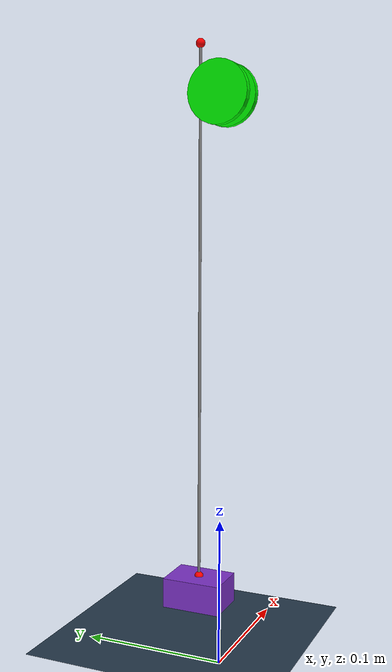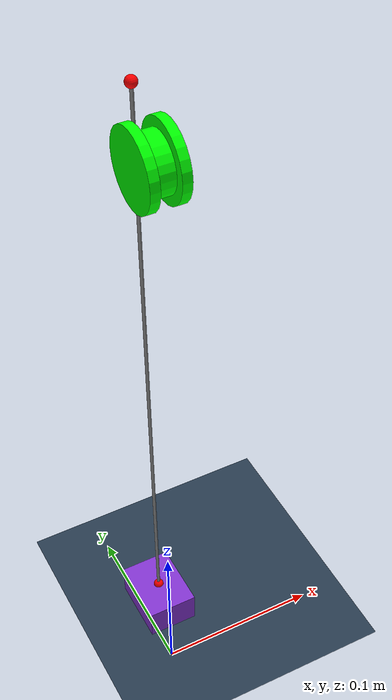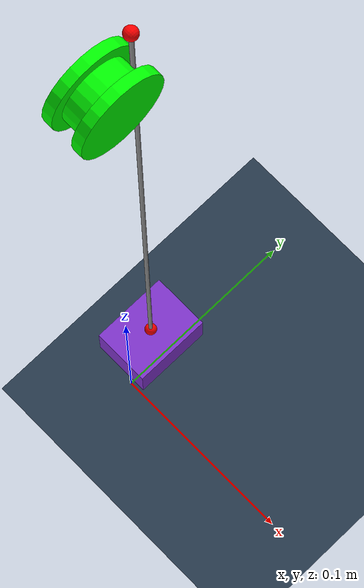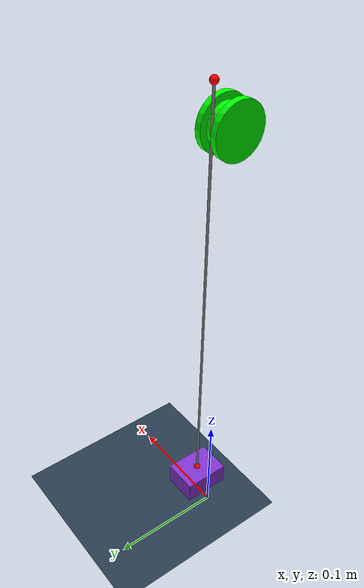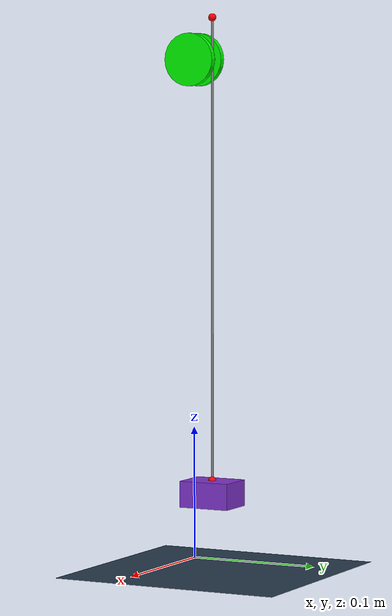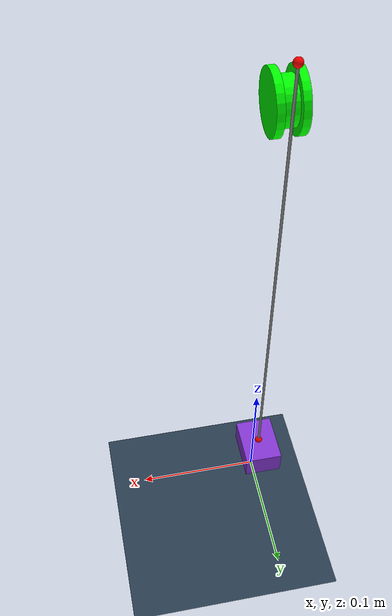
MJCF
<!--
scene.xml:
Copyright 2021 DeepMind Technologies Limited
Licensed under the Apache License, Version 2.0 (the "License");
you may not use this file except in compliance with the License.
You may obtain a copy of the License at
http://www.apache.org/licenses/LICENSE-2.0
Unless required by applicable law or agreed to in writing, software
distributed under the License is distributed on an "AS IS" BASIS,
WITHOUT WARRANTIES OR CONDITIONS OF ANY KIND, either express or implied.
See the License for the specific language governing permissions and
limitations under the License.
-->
<mujoco model="Brickiebot">

  <compiler meshdir="assets"/>
  <include file="scene.xml"/>

  <option timestep="0.001" jacobian="dense"/>
  <size nconmax="500" njmax="1500" nkey="1"/>

  <default>
    <geom solref="1e-2 5" solimp=".5 .99 1e-3" friction=".5"/>
  </default>

  <worldbody>
    <light pos=".5 0 2"/>

<!-- ############################################### TENDON TYPE HERE ############################################## -->

  <body name="beam" pos="0 0 0.3785" quat="0 1 0 1">
      <body name="slider" pos="0 0 0">
        <geom type="cylinder" density="100" size=".015 .005 .015" rgba="0 1 0 1" mass="10"/>
        <geom type="cylinder" density="100" size=".02 .0025 .02" pos="0 0 0.0075" rgba="0 1 0 1" mass="10"/>
        <geom type="cylinder" density="100" size=".02 .0025 .02" pos="0 0 -0.0075" rgba="0 1 0 1" mass="10"/>
      </body>
    </body>

    <body name="moving_bax" pos="0 0.015 0.41" quat="0 1 0 1">
      <geom type="box" size=".001 .001 .001" rgba=".5 .2 .8 1" mass="10"/>
      <site name="cable_up" pos="0 0 -0.0005" size="0.003" rgba="1 0 0 1"/>
      <joint name="slider" type="slide" axis="0 1 0" pos="0 0 0" damping="1"/>
    </body>

    <body name="payload" pos="0 0.015 0.05">
      <geom type="box" size=".015 .02 0.01" rgba=".5 .2 .8 1" mass="1"/>
      <freejoint/>
       <geom type="cylinder" size=".001 .001" density="100"  rgba=".5 .2 .2 .5"/>
      <site name="cable_down" pos="0 0 0.01" size="0.003" rgba="1 0 0 1"/>
    </body>

  </worldbody>

  <tendon>
    <spatial name="tendon_cable" limited="true" width=".001" springlength="0.5" range="0 0.2" solimplimit="0.001 0.001 0.001 0.5 1" solreflimit="-100 -0" damping="50">
      <site site="cable_up"/>
      <site site="cable_down"/>
    </spatial>
  </tendon>

  <actuator>
    <position joint="slider" ctrllimited="true" ctrlrange="-1 1"/>
  </actuator>

</mujoco>

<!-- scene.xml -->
<mujoco>
  <compiler meshdir="assets" texturedir="assets"/>
  <statistic extent="1.5" meansize=".05"/>

  <option timestep="0.005" jacobian="sparse"/>

  <visual>
    <rgba haze="0.15 0.25 0.35 1"/>
    <quality shadowsize="4096"/>
    <map stiffness="700" shadowscale="0.5" fogstart="10" fogend="15" zfar="40" haze="0.3"/>
  </visual>

  <asset>
    <texture type="skybox" builtin="gradient" rgb1="0.3 0.5 0.7" rgb2="0 0 0" width="512" height="512"/>
    <texture name="texplane" type="2d" builtin="checker" rgb1=".2 .3 .4" rgb2=".1 0.15 0.2"
      width="512" height="512" mark="cross" markrgb=".8 .8 .8"/>
    <texture name="texcarpet" type="2d" file="carpet.png"/>
    <texture name="texsponge" type="2d" file="sponge.png"/>
    <texture name="texmarble" type="cube" file="marble.png"/>

    <material name="matplane" reflectance="0.3" texture="texplane" texrepeat="1 1" texuniform="true"/>
    <material name="matcarpet" texture="texcarpet"/>
    <material name="matsponge" texture="texsponge" specular="0.3"/>
    <material name="matmarble" texture="texmarble" rgba=".7 .7 .7 1"/>
  </asset>

  <worldbody>
    <light directional="true" diffuse=".4 .4 .4" specular="0.1 0.1 0.1" pos="0 0 5.0" dir="0 0 -1" castshadow="false"/>
    <light directional="true" diffuse=".6 .6 .6" specular="0.2 0.2 0.2" pos="0 0 4" dir="0 0 -1"/>

    <geom name="ground" type="plane" size="0 0 1" pos="0 0 0" quat="1 0 0 0" material="matplane" condim="1"/>

  </worldbody>
</mujoco>
